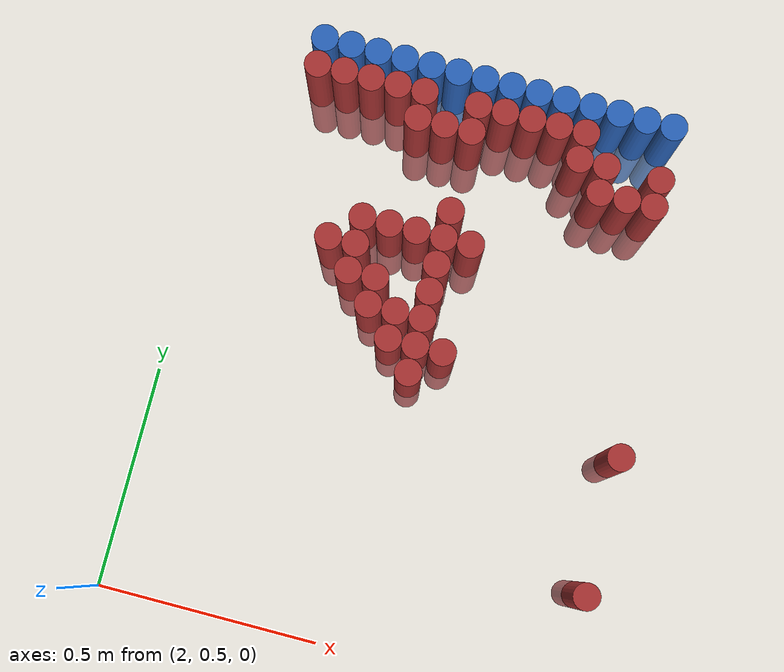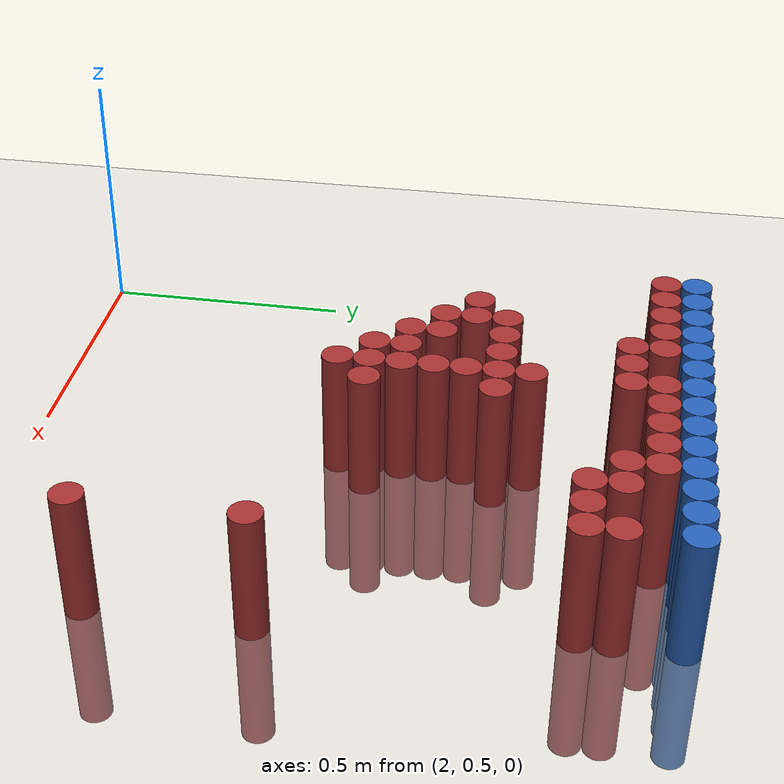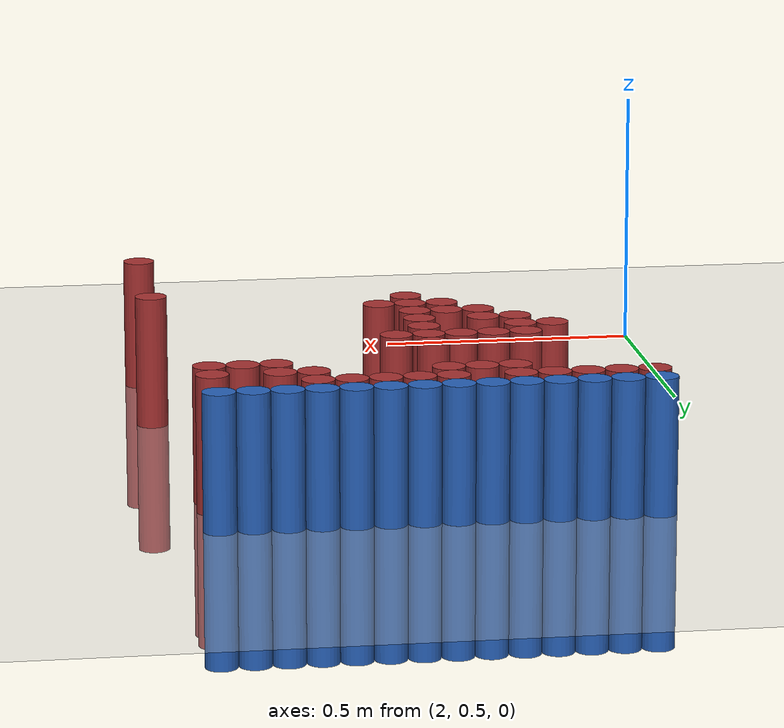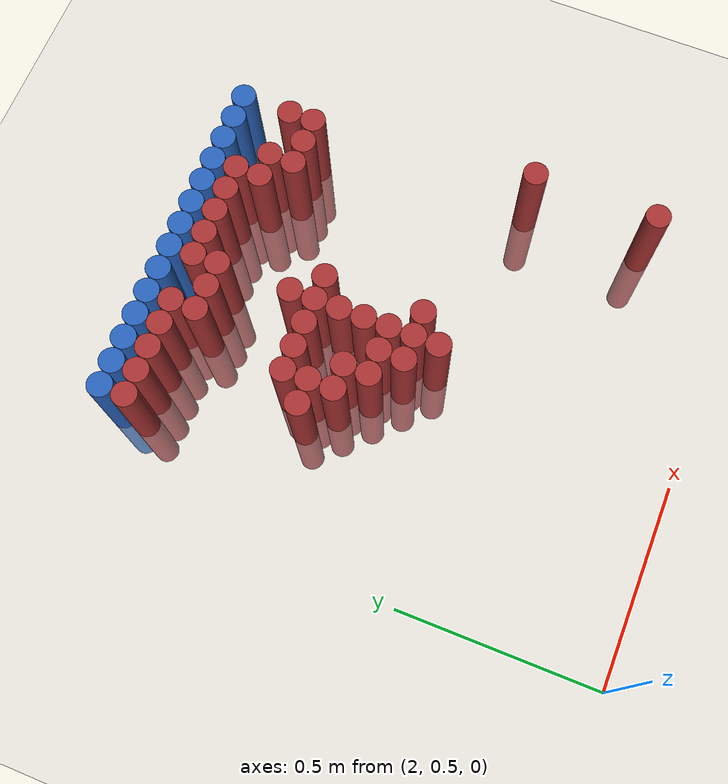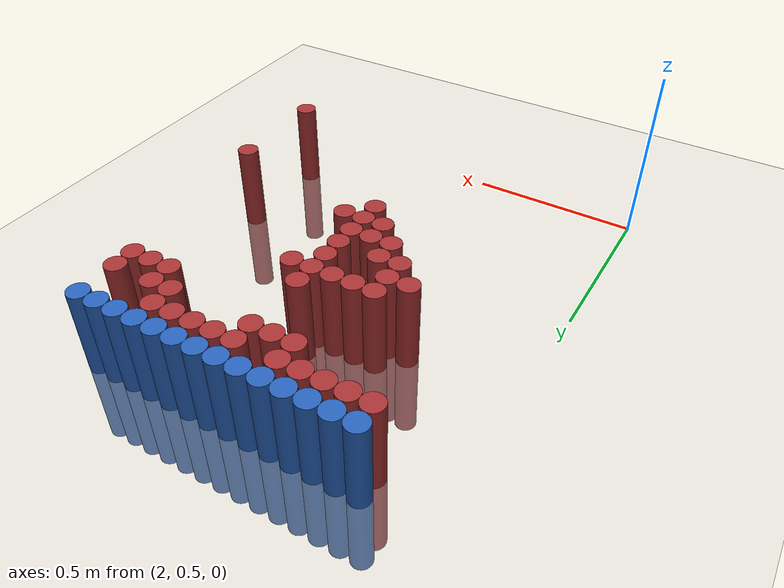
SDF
<sdf version="1.6">
 <world name="default">
  <model name="ground_plane">
   <static>1</static>
   <link name="link">
    <collision name="collision">
     <geometry><plane><normal>0 0 1</normal><size>100 100</size></plane></geometry>
     <surface><friction><ode><mu>100</mu><mu2>50</mu2></ode></friction></surface>
    </collision>
    <visual name="visual">
     <cast_shadows>0</cast_shadows>
     <geometry><plane><normal>0 0 1</normal><size>100 100</size></plane></geometry>
     <material>
      <script><uri>file://media/materials/scripts/gazebo.material</uri><name>Gazebo/Grey</name></script>
     </material>
    </visual>
   </link>
  </model>
  <model name="unit_cylinder_97">
   <static>1</static>
   <pose>2.190000 1.770000 0.000000 0.000000 0.000000 0.000000</pose>
   <link name="link">
    <inertial>
     <mass>1</mass>
     <inertia><ixx>0.145833</ixx><ixy>0</ixy><ixz>0</ixz><iyy>0.145833</iyy><iyz>0</iyz><izz>0.125</izz></inertia>
    </inertial>
    <collision name="collision">
     <geometry><cylinder><radius>0.030000</radius><length>0.5</length></cylinder></geometry>
    </collision>
    <visual name="visual">
     <geometry><cylinder><radius>0.030000</radius><length>0.5</length></cylinder></geometry>
     <material>
      <ambient>0.152000 0.379000 0.720000 1</ambient>
      <diffuse>0.152000 0.379000 0.720000 1</diffuse>
     </material>
     <material>
      <script><name>Gazebo/Grey</name><uri>file://media/materials/scripts/gazebo.material</uri></script>
     </material>
    </visual>
   </link>
  </model>
  <model name="unit_cylinder_98">
   <static>1</static>
   <pose>2.250000 1.770000 0.000000 0.000000 0.000000 0.000000</pose>
   <link name="link">
    <inertial>
     <mass>1</mass>
     <inertia><ixx>0.145833</ixx><ixy>0</ixy><ixz>0</ixz><iyy>0.145833</iyy><iyz>0</iyz><izz>0.125</izz></inertia>
    </inertial>
    <collision name="collision">
     <geometry><cylinder><radius>0.030000</radius><length>0.5</length></cylinder></geometry>
    </collision>
    <visual name="visual">
     <geometry><cylinder><radius>0.030000</radius><length>0.5</length></cylinder></geometry>
     <material>
      <ambient>0.152000 0.379000 0.720000 1</ambient>
      <diffuse>0.152000 0.379000 0.720000 1</diffuse>
     </material>
     <material>
      <script><name>Gazebo/Grey</name><uri>file://media/materials/scripts/gazebo.material</uri></script>
     </material>
    </visual>
   </link>
  </model>
  <model name="unit_cylinder_99">
   <static>1</static>
   <pose>2.310000 1.770000 0.000000 0.000000 0.000000 0.000000</pose>
   <link name="link">
    <inertial>
     <mass>1</mass>
     <inertia><ixx>0.145833</ixx><ixy>0</ixy><ixz>0</ixz><iyy>0.145833</iyy><iyz>0</iyz><izz>0.125</izz></inertia>
    </inertial>
    <collision name="collision">
     <geometry><cylinder><radius>0.030000</radius><length>0.5</length></cylinder></geometry>
    </collision>
    <visual name="visual">
     <geometry><cylinder><radius>0.030000</radius><length>0.5</length></cylinder></geometry>
     <material>
      <ambient>0.152000 0.379000 0.720000 1</ambient>
      <diffuse>0.152000 0.379000 0.720000 1</diffuse>
     </material>
     <material>
      <script><name>Gazebo/Grey</name><uri>file://media/materials/scripts/gazebo.material</uri></script>
     </material>
    </visual>
   </link>
  </model>
  <model name="unit_cylinder_100">
   <static>1</static>
   <pose>2.370000 1.770000 0.000000 0.000000 0.000000 0.000000</pose>
   <link name="link">
    <inertial>
     <mass>1</mass>
     <inertia><ixx>0.145833</ixx><ixy>0</ixy><ixz>0</ixz><iyy>0.145833</iyy><iyz>0</iyz><izz>0.125</izz></inertia>
    </inertial>
    <collision name="collision">
     <geometry><cylinder><radius>0.030000</radius><length>0.5</length></cylinder></geometry>
    </collision>
    <visual name="visual">
     <geometry><cylinder><radius>0.030000</radius><length>0.5</length></cylinder></geometry>
     <material>
      <ambient>0.152000 0.379000 0.720000 1</ambient>
      <diffuse>0.152000 0.379000 0.720000 1</diffuse>
     </material>
     <material>
      <script><name>Gazebo/Grey</name><uri>file://media/materials/scripts/gazebo.material</uri></script>
     </material>
    </visual>
   </link>
  </model>
  <model name="unit_cylinder_101">
   <static>1</static>
   <pose>2.430000 1.770000 0.000000 0.000000 0.000000 0.000000</pose>
   <link name="link">
    <inertial>
     <mass>1</mass>
     <inertia><ixx>0.145833</ixx><ixy>0</ixy><ixz>0</ixz><iyy>0.145833</iyy><iyz>0</iyz><izz>0.125</izz></inertia>
    </inertial>
    <collision name="collision">
     <geometry><cylinder><radius>0.030000</radius><length>0.5</length></cylinder></geometry>
    </collision>
    <visual name="visual">
     <geometry><cylinder><radius>0.030000</radius><length>0.5</length></cylinder></geometry>
     <material>
      <ambient>0.152000 0.379000 0.720000 1</ambient>
      <diffuse>0.152000 0.379000 0.720000 1</diffuse>
     </material>
     <material>
      <script><name>Gazebo/Grey</name><uri>file://media/materials/scripts/gazebo.material</uri></script>
     </material>
    </visual>
   </link>
  </model>
  <model name="unit_cylinder_102">
   <static>1</static>
   <pose>2.490000 1.770000 0.000000 0.000000 0.000000 0.000000</pose>
   <link name="link">
    <inertial>
     <mass>1</mass>
     <inertia><ixx>0.145833</ixx><ixy>0</ixy><ixz>0</ixz><iyy>0.145833</iyy><iyz>0</iyz><izz>0.125</izz></inertia>
    </inertial>
    <collision name="collision">
     <geometry><cylinder><radius>0.030000</radius><length>0.5</length></cylinder></geometry>
    </collision>
    <visual name="visual">
     <geometry><cylinder><radius>0.030000</radius><length>0.5</length></cylinder></geometry>
     <material>
      <ambient>0.152000 0.379000 0.720000 1</ambient>
      <diffuse>0.152000 0.379000 0.720000 1</diffuse>
     </material>
     <material>
      <script><name>Gazebo/Grey</name><uri>file://media/materials/scripts/gazebo.material</uri></script>
     </material>
    </visual>
   </link>
  </model>
  <model name="unit_cylinder_103">
   <static>1</static>
   <pose>2.550000 1.770000 0.000000 0.000000 0.000000 0.000000</pose>
   <link name="link">
    <inertial>
     <mass>1</mass>
     <inertia><ixx>0.145833</ixx><ixy>0</ixy><ixz>0</ixz><iyy>0.145833</iyy><iyz>0</iyz><izz>0.125</izz></inertia>
    </inertial>
    <collision name="collision">
     <geometry><cylinder><radius>0.030000</radius><length>0.5</length></cylinder></geometry>
    </collision>
    <visual name="visual">
     <geometry><cylinder><radius>0.030000</radius><length>0.5</length></cylinder></geometry>
     <material>
      <ambient>0.152000 0.379000 0.720000 1</ambient>
      <diffuse>0.152000 0.379000 0.720000 1</diffuse>
     </material>
     <material>
      <script><name>Gazebo/Grey</name><uri>file://media/materials/scripts/gazebo.material</uri></script>
     </material>
    </visual>
   </link>
  </model>
  <model name="unit_cylinder_104">
   <static>1</static>
   <pose>2.610000 1.770000 0.000000 0.000000 0.000000 0.000000</pose>
   <link name="link">
    <inertial>
     <mass>1</mass>
     <inertia><ixx>0.145833</ixx><ixy>0</ixy><ixz>0</ixz><iyy>0.145833</iyy><iyz>0</iyz><izz>0.125</izz></inertia>
    </inertial>
    <collision name="collision">
     <geometry><cylinder><radius>0.030000</radius><length>0.5</length></cylinder></geometry>
    </collision>
    <visual name="visual">
     <geometry><cylinder><radius>0.030000</radius><length>0.5</length></cylinder></geometry>
     <material>
      <ambient>0.152000 0.379000 0.720000 1</ambient>
      <diffuse>0.152000 0.379000 0.720000 1</diffuse>
     </material>
     <material>
      <script><name>Gazebo/Grey</name><uri>file://media/materials/scripts/gazebo.material</uri></script>
     </material>
    </visual>
   </link>
  </model>
  <model name="unit_cylinder_105">
   <static>1</static>
   <pose>2.670000 1.770000 0.000000 0.000000 0.000000 0.000000</pose>
   <link name="link">
    <inertial>
     <mass>1</mass>
     <inertia><ixx>0.145833</ixx><ixy>0</ixy><ixz>0</ixz><iyy>0.145833</iyy><iyz>0</iyz><izz>0.125</izz></inertia>
    </inertial>
    <collision name="collision">
     <geometry><cylinder><radius>0.030000</radius><length>0.5</length></cylinder></geometry>
    </collision>
    <visual name="visual">
     <geometry><cylinder><radius>0.030000</radius><length>0.5</length></cylinder></geometry>
     <material>
      <ambient>0.152000 0.379000 0.720000 1</ambient>
      <diffuse>0.152000 0.379000 0.720000 1</diffuse>
     </material>
     <material>
      <script><name>Gazebo/Grey</name><uri>file://media/materials/scripts/gazebo.material</uri></script>
     </material>
    </visual>
   </link>
  </model>
  <model name="unit_cylinder_106">
   <static>1</static>
   <pose>2.730000 1.770000 0.000000 0.000000 0.000000 0.000000</pose>
   <link name="link">
    <inertial>
     <mass>1</mass>
     <inertia><ixx>0.145833</ixx><ixy>0</ixy><ixz>0</ixz><iyy>0.145833</iyy><iyz>0</iyz><izz>0.125</izz></inertia>
    </inertial>
    <collision name="collision">
     <geometry><cylinder><radius>0.030000</radius><length>0.5</length></cylinder></geometry>
    </collision>
    <visual name="visual">
     <geometry><cylinder><radius>0.030000</radius><length>0.5</length></cylinder></geometry>
     <material>
      <ambient>0.152000 0.379000 0.720000 1</ambient>
      <diffuse>0.152000 0.379000 0.720000 1</diffuse>
     </material>
     <material>
      <script><name>Gazebo/Grey</name><uri>file://media/materials/scripts/gazebo.material</uri></script>
     </material>
    </visual>
   </link>
  </model>
  <model name="unit_cylinder_107">
   <static>1</static>
   <pose>2.790000 1.770000 0.000000 0.000000 0.000000 0.000000</pose>
   <link name="link">
    <inertial>
     <mass>1</mass>
     <inertia><ixx>0.145833</ixx><ixy>0</ixy><ixz>0</ixz><iyy>0.145833</iyy><iyz>0</iyz><izz>0.125</izz></inertia>
    </inertial>
    <collision name="collision">
     <geometry><cylinder><radius>0.030000</radius><length>0.5</length></cylinder></geometry>
    </collision>
    <visual name="visual">
     <geometry><cylinder><radius>0.030000</radius><length>0.5</length></cylinder></geometry>
     <material>
      <ambient>0.152000 0.379000 0.720000 1</ambient>
      <diffuse>0.152000 0.379000 0.720000 1</diffuse>
     </material>
     <material>
      <script><name>Gazebo/Grey</name><uri>file://media/materials/scripts/gazebo.material</uri></script>
     </material>
    </visual>
   </link>
  </model>
  <model name="unit_cylinder_108">
   <static>1</static>
   <pose>2.850000 1.770000 0.000000 0.000000 0.000000 0.000000</pose>
   <link name="link">
    <inertial>
     <mass>1</mass>
     <inertia><ixx>0.145833</ixx><ixy>0</ixy><ixz>0</ixz><iyy>0.145833</iyy><iyz>0</iyz><izz>0.125</izz></inertia>
    </inertial>
    <collision name="collision">
     <geometry><cylinder><radius>0.030000</radius><length>0.5</length></cylinder></geometry>
    </collision>
    <visual name="visual">
     <geometry><cylinder><radius>0.030000</radius><length>0.5</length></cylinder></geometry>
     <material>
      <ambient>0.152000 0.379000 0.720000 1</ambient>
      <diffuse>0.152000 0.379000 0.720000 1</diffuse>
     </material>
     <material>
      <script><name>Gazebo/Grey</name><uri>file://media/materials/scripts/gazebo.material</uri></script>
     </material>
    </visual>
   </link>
  </model>
  <model name="unit_cylinder_109">
   <static>1</static>
   <pose>2.910000 1.770000 0.000000 0.000000 0.000000 0.000000</pose>
   <link name="link">
    <inertial>
     <mass>1</mass>
     <inertia><ixx>0.145833</ixx><ixy>0</ixy><ixz>0</ixz><iyy>0.145833</iyy><iyz>0</iyz><izz>0.125</izz></inertia>
    </inertial>
    <collision name="collision">
     <geometry><cylinder><radius>0.030000</radius><length>0.5</length></cylinder></geometry>
    </collision>
    <visual name="visual">
     <geometry><cylinder><radius>0.030000</radius><length>0.5</length></cylinder></geometry>
     <material>
      <ambient>0.152000 0.379000 0.720000 1</ambient>
      <diffuse>0.152000 0.379000 0.720000 1</diffuse>
     </material>
     <material>
      <script><name>Gazebo/Grey</name><uri>file://media/materials/scripts/gazebo.material</uri></script>
     </material>
    </visual>
   </link>
  </model>
  <model name="unit_cylinder_110">
   <static>1</static>
   <pose>2.970000 1.770000 0.000000 0.000000 0.000000 0.000000</pose>
   <link name="link">
    <inertial>
     <mass>1</mass>
     <inertia><ixx>0.145833</ixx><ixy>0</ixy><ixz>0</ixz><iyy>0.145833</iyy><iyz>0</iyz><izz>0.125</izz></inertia>
    </inertial>
    <collision name="collision">
     <geometry><cylinder><radius>0.030000</radius><length>0.5</length></cylinder></geometry>
    </collision>
    <visual name="visual">
     <geometry><cylinder><radius>0.030000</radius><length>0.5</length></cylinder></geometry>
     <material>
      <ambient>0.152000 0.379000 0.720000 1</ambient>
      <diffuse>0.152000 0.379000 0.720000 1</diffuse>
     </material>
     <material>
      <script><name>Gazebo/Grey</name><uri>file://media/materials/scripts/gazebo.material</uri></script>
     </material>
    </visual>
   </link>
  </model>
  <model name="unit_cylinder_127">
   <static>1</static>
   <pose>2.190000 1.710000 0.000000 0.000000 0.000000 0.000000</pose>
   <link name="link">
    <inertial>
     <mass>1</mass>
     <inertia><ixx>0.145833</ixx><ixy>0</ixy><ixz>0</ixz><iyy>0.145833</iyy><iyz>0</iyz><izz>0.125</izz></inertia>
    </inertial>
    <collision name="collision">
     <geometry><cylinder><radius>0.030000</radius><length>0.5</length></cylinder></geometry>
    </collision>
    <visual name="visual">
     <geometry><cylinder><radius>0.030000</radius><length>0.5</length></cylinder></geometry>
     <material>
      <ambient>0.648000 0.192000 0.192000 1</ambient>
      <diffuse>0.648000 0.192000 0.192000 1</diffuse>
     </material>
     <material>
      <script><name>Gazebo/Grey</name><uri>file://media/materials/scripts/gazebo.material</uri></script>
     </material>
    </visual>
   </link>
  </model>
  <model name="unit_cylinder_128">
   <static>1</static>
   <pose>2.250000 1.710000 0.000000 0.000000 0.000000 0.000000</pose>
   <link name="link">
    <inertial>
     <mass>1</mass>
     <inertia><ixx>0.145833</ixx><ixy>0</ixy><ixz>0</ixz><iyy>0.145833</iyy><iyz>0</iyz><izz>0.125</izz></inertia>
    </inertial>
    <collision name="collision">
     <geometry><cylinder><radius>0.030000</radius><length>0.5</length></cylinder></geometry>
    </collision>
    <visual name="visual">
     <geometry><cylinder><radius>0.030000</radius><length>0.5</length></cylinder></geometry>
     <material>
      <ambient>0.648000 0.192000 0.192000 1</ambient>
      <diffuse>0.648000 0.192000 0.192000 1</diffuse>
     </material>
     <material>
      <script><name>Gazebo/Grey</name><uri>file://media/materials/scripts/gazebo.material</uri></script>
     </material>
    </visual>
   </link>
  </model>
  <model name="unit_cylinder_129">
   <static>1</static>
   <pose>2.310000 1.710000 0.000000 0.000000 0.000000 0.000000</pose>
   <link name="link">
    <inertial>
     <mass>1</mass>
     <inertia><ixx>0.145833</ixx><ixy>0</ixy><ixz>0</ixz><iyy>0.145833</iyy><iyz>0</iyz><izz>0.125</izz></inertia>
    </inertial>
    <collision name="collision">
     <geometry><cylinder><radius>0.030000</radius><length>0.5</length></cylinder></geometry>
    </collision>
    <visual name="visual">
     <geometry><cylinder><radius>0.030000</radius><length>0.5</length></cylinder></geometry>
     <material>
      <ambient>0.648000 0.192000 0.192000 1</ambient>
      <diffuse>0.648000 0.192000 0.192000 1</diffuse>
     </material>
     <material>
      <script><name>Gazebo/Grey</name><uri>file://media/materials/scripts/gazebo.material</uri></script>
     </material>
    </visual>
   </link>
  </model>
  <model name="unit_cylinder_130">
   <static>1</static>
   <pose>2.370000 1.710000 0.000000 0.000000 0.000000 0.000000</pose>
   <link name="link">
    <inertial>
     <mass>1</mass>
     <inertia><ixx>0.145833</ixx><ixy>0</ixy><ixz>0</ixz><iyy>0.145833</iyy><iyz>0</iyz><izz>0.125</izz></inertia>
    </inertial>
    <collision name="collision">
     <geometry><cylinder><radius>0.030000</radius><length>0.5</length></cylinder></geometry>
    </collision>
    <visual name="visual">
     <geometry><cylinder><radius>0.030000</radius><length>0.5</length></cylinder></geometry>
     <material>
      <ambient>0.648000 0.192000 0.192000 1</ambient>
      <diffuse>0.648000 0.192000 0.192000 1</diffuse>
     </material>
     <material>
      <script><name>Gazebo/Grey</name><uri>file://media/materials/scripts/gazebo.material</uri></script>
     </material>
    </visual>
   </link>
  </model>
  <model name="unit_cylinder_131">
   <static>1</static>
   <pose>2.430000 1.710000 0.000000 0.000000 0.000000 0.000000</pose>
   <link name="link">
    <inertial>
     <mass>1</mass>
     <inertia><ixx>0.145833</ixx><ixy>0</ixy><ixz>0</ixz><iyy>0.145833</iyy><iyz>0</iyz><izz>0.125</izz></inertia>
    </inertial>
    <collision name="collision">
     <geometry><cylinder><radius>0.030000</radius><length>0.5</length></cylinder></geometry>
    </collision>
    <visual name="visual">
     <geometry><cylinder><radius>0.030000</radius><length>0.5</length></cylinder></geometry>
     <material>
      <ambient>0.648000 0.192000 0.192000 1</ambient>
      <diffuse>0.648000 0.192000 0.192000 1</diffuse>
     </material>
     <material>
      <script><name>Gazebo/Grey</name><uri>file://media/materials/scripts/gazebo.material</uri></script>
     </material>
    </visual>
   </link>
  </model>
  <model name="unit_cylinder_132">
   <static>1</static>
   <pose>2.550000 1.710000 0.000000 0.000000 0.000000 0.000000</pose>
   <link name="link">
    <inertial>
     <mass>1</mass>
     <inertia><ixx>0.145833</ixx><ixy>0</ixy><ixz>0</ixz><iyy>0.145833</iyy><iyz>0</iyz><izz>0.125</izz></inertia>
    </inertial>
    <collision name="collision">
     <geometry><cylinder><radius>0.030000</radius><length>0.5</length></cylinder></geometry>
    </collision>
    <visual name="visual">
     <geometry><cylinder><radius>0.030000</radius><length>0.5</length></cylinder></geometry>
     <material>
      <ambient>0.648000 0.192000 0.192000 1</ambient>
      <diffuse>0.648000 0.192000 0.192000 1</diffuse>
     </material>
     <material>
      <script><name>Gazebo/Grey</name><uri>file://media/materials/scripts/gazebo.material</uri></script>
     </material>
    </visual>
   </link>
  </model>
  <model name="unit_cylinder_133">
   <static>1</static>
   <pose>2.610000 1.710000 0.000000 0.000000 0.000000 0.000000</pose>
   <link name="link">
    <inertial>
     <mass>1</mass>
     <inertia><ixx>0.145833</ixx><ixy>0</ixy><ixz>0</ixz><iyy>0.145833</iyy><iyz>0</iyz><izz>0.125</izz></inertia>
    </inertial>
    <collision name="collision">
     <geometry><cylinder><radius>0.030000</radius><length>0.5</length></cylinder></geometry>
    </collision>
    <visual name="visual">
     <geometry><cylinder><radius>0.030000</radius><length>0.5</length></cylinder></geometry>
     <material>
      <ambient>0.648000 0.192000 0.192000 1</ambient>
      <diffuse>0.648000 0.192000 0.192000 1</diffuse>
     </material>
     <material>
      <script><name>Gazebo/Grey</name><uri>file://media/materials/scripts/gazebo.material</uri></script>
     </material>
    </visual>
   </link>
  </model>
  <model name="unit_cylinder_134">
   <static>1</static>
   <pose>2.670000 1.710000 0.000000 0.000000 0.000000 0.000000</pose>
   <link name="link">
    <inertial>
     <mass>1</mass>
     <inertia><ixx>0.145833</ixx><ixy>0</ixy><ixz>0</ixz><iyy>0.145833</iyy><iyz>0</iyz><izz>0.125</izz></inertia>
    </inertial>
    <collision name="collision">
     <geometry><cylinder><radius>0.030000</radius><length>0.5</length></cylinder></geometry>
    </collision>
    <visual name="visual">
     <geometry><cylinder><radius>0.030000</radius><length>0.5</length></cylinder></geometry>
     <material>
      <ambient>0.648000 0.192000 0.192000 1</ambient>
      <diffuse>0.648000 0.192000 0.192000 1</diffuse>
     </material>
     <material>
      <script><name>Gazebo/Grey</name><uri>file://media/materials/scripts/gazebo.material</uri></script>
     </material>
    </visual>
   </link>
  </model>
  <model name="unit_cylinder_135">
   <static>1</static>
   <pose>2.730000 1.710000 0.000000 0.000000 0.000000 0.000000</pose>
   <link name="link">
    <inertial>
     <mass>1</mass>
     <inertia><ixx>0.145833</ixx><ixy>0</ixy><ixz>0</ixz><iyy>0.145833</iyy><iyz>0</iyz><izz>0.125</izz></inertia>
    </inertial>
    <collision name="collision">
     <geometry><cylinder><radius>0.030000</radius><length>0.5</length></cylinder></geometry>
    </collision>
    <visual name="visual">
     <geometry><cylinder><radius>0.030000</radius><length>0.5</length></cylinder></geometry>
     <material>
      <ambient>0.648000 0.192000 0.192000 1</ambient>
      <diffuse>0.648000 0.192000 0.192000 1</diffuse>
     </material>
     <material>
      <script><name>Gazebo/Grey</name><uri>file://media/materials/scripts/gazebo.material</uri></script>
     </material>
    </visual>
   </link>
  </model>
  <model name="unit_cylinder_136">
   <static>1</static>
   <pose>2.790000 1.710000 0.000000 0.000000 0.000000 0.000000</pose>
   <link name="link">
    <inertial>
     <mass>1</mass>
     <inertia><ixx>0.145833</ixx><ixy>0</ixy><ixz>0</ixz><iyy>0.145833</iyy><iyz>0</iyz><izz>0.125</izz></inertia>
    </inertial>
    <collision name="collision">
     <geometry><cylinder><radius>0.030000</radius><length>0.5</length></cylinder></geometry>
    </collision>
    <visual name="visual">
     <geometry><cylinder><radius>0.030000</radius><length>0.5</length></cylinder></geometry>
     <material>
      <ambient>0.648000 0.192000 0.192000 1</ambient>
      <diffuse>0.648000 0.192000 0.192000 1</diffuse>
     </material>
     <material>
      <script><name>Gazebo/Grey</name><uri>file://media/materials/scripts/gazebo.material</uri></script>
     </material>
    </visual>
   </link>
  </model>
  <model name="unit_cylinder_143">
   <static>1</static>
   <pose>2.430000 1.650000 0.000000 0.000000 0.000000 0.000000</pose>
   <link name="link">
    <inertial>
     <mass>1</mass>
     <inertia><ixx>0.145833</ixx><ixy>0</ixy><ixz>0</ixz><iyy>0.145833</iyy><iyz>0</iyz><izz>0.125</izz></inertia>
    </inertial>
    <collision name="collision">
     <geometry><cylinder><radius>0.030000</radius><length>0.5</length></cylinder></geometry>
    </collision>
    <visual name="visual">
     <geometry><cylinder><radius>0.030000</radius><length>0.5</length></cylinder></geometry>
     <material>
      <ambient>0.648000 0.192000 0.192000 1</ambient>
      <diffuse>0.648000 0.192000 0.192000 1</diffuse>
     </material>
     <material>
      <script><name>Gazebo/Grey</name><uri>file://media/materials/scripts/gazebo.material</uri></script>
     </material>
    </visual>
   </link>
  </model>
  <model name="unit_cylinder_144">
   <static>1</static>
   <pose>2.490000 1.650000 0.000000 0.000000 0.000000 0.000000</pose>
   <link name="link">
    <inertial>
     <mass>1</mass>
     <inertia><ixx>0.145833</ixx><ixy>0</ixy><ixz>0</ixz><iyy>0.145833</iyy><iyz>0</iyz><izz>0.125</izz></inertia>
    </inertial>
    <collision name="collision">
     <geometry><cylinder><radius>0.030000</radius><length>0.5</length></cylinder></geometry>
    </collision>
    <visual name="visual">
     <geometry><cylinder><radius>0.030000</radius><length>0.5</length></cylinder></geometry>
     <material>
      <ambient>0.648000 0.192000 0.192000 1</ambient>
      <diffuse>0.648000 0.192000 0.192000 1</diffuse>
     </material>
     <material>
      <script><name>Gazebo/Grey</name><uri>file://media/materials/scripts/gazebo.material</uri></script>
     </material>
    </visual>
   </link>
  </model>
  <model name="unit_cylinder_145">
   <static>1</static>
   <pose>2.550000 1.650000 0.000000 0.000000 0.000000 0.000000</pose>
   <link name="link">
    <inertial>
     <mass>1</mass>
     <inertia><ixx>0.145833</ixx><ixy>0</ixy><ixz>0</ixz><iyy>0.145833</iyy><iyz>0</iyz><izz>0.125</izz></inertia>
    </inertial>
    <collision name="collision">
     <geometry><cylinder><radius>0.030000</radius><length>0.5</length></cylinder></geometry>
    </collision>
    <visual name="visual">
     <geometry><cylinder><radius>0.030000</radius><length>0.5</length></cylinder></geometry>
     <material>
      <ambient>0.648000 0.192000 0.192000 1</ambient>
      <diffuse>0.648000 0.192000 0.192000 1</diffuse>
     </material>
     <material>
      <script><name>Gazebo/Grey</name><uri>file://media/materials/scripts/gazebo.material</uri></script>
     </material>
    </visual>
   </link>
  </model>
  <model name="unit_cylinder_146">
   <static>1</static>
   <pose>2.790000 1.650000 0.000000 0.000000 0.000000 0.000000</pose>
   <link name="link">
    <inertial>
     <mass>1</mass>
     <inertia><ixx>0.145833</ixx><ixy>0</ixy><ixz>0</ixz><iyy>0.145833</iyy><iyz>0</iyz><izz>0.125</izz></inertia>
    </inertial>
    <collision name="collision">
     <geometry><cylinder><radius>0.030000</radius><length>0.5</length></cylinder></geometry>
    </collision>
    <visual name="visual">
     <geometry><cylinder><radius>0.030000</radius><length>0.5</length></cylinder></geometry>
     <material>
      <ambient>0.648000 0.192000 0.192000 1</ambient>
      <diffuse>0.648000 0.192000 0.192000 1</diffuse>
     </material>
     <material>
      <script><name>Gazebo/Grey</name><uri>file://media/materials/scripts/gazebo.material</uri></script>
     </material>
    </visual>
   </link>
  </model>
  <model name="unit_cylinder_147">
   <static>1</static>
   <pose>2.850000 1.650000 0.000000 0.000000 0.000000 0.000000</pose>
   <link name="link">
    <inertial>
     <mass>1</mass>
     <inertia><ixx>0.145833</ixx><ixy>0</ixy><ixz>0</ixz><iyy>0.145833</iyy><iyz>0</iyz><izz>0.125</izz></inertia>
    </inertial>
    <collision name="collision">
     <geometry><cylinder><radius>0.030000</radius><length>0.5</length></cylinder></geometry>
    </collision>
    <visual name="visual">
     <geometry><cylinder><radius>0.030000</radius><length>0.5</length></cylinder></geometry>
     <material>
      <ambient>0.648000 0.192000 0.192000 1</ambient>
      <diffuse>0.648000 0.192000 0.192000 1</diffuse>
     </material>
     <material>
      <script><name>Gazebo/Grey</name><uri>file://media/materials/scripts/gazebo.material</uri></script>
     </material>
    </visual>
   </link>
  </model>
  <model name="unit_cylinder_148">
   <static>1</static>
   <pose>2.970000 1.650000 0.000000 0.000000 0.000000 0.000000</pose>
   <link name="link">
    <inertial>
     <mass>1</mass>
     <inertia><ixx>0.145833</ixx><ixy>0</ixy><ixz>0</ixz><iyy>0.145833</iyy><iyz>0</iyz><izz>0.125</izz></inertia>
    </inertial>
    <collision name="collision">
     <geometry><cylinder><radius>0.030000</radius><length>0.5</length></cylinder></geometry>
    </collision>
    <visual name="visual">
     <geometry><cylinder><radius>0.030000</radius><length>0.5</length></cylinder></geometry>
     <material>
      <ambient>0.648000 0.192000 0.192000 1</ambient>
      <diffuse>0.648000 0.192000 0.192000 1</diffuse>
     </material>
     <material>
      <script><name>Gazebo/Grey</name><uri>file://media/materials/scripts/gazebo.material</uri></script>
     </material>
    </visual>
   </link>
  </model>
  <model name="unit_cylinder_153">
   <static>1</static>
   <pose>2.850000 1.590000 0.000000 0.000000 0.000000 0.000000</pose>
   <link name="link">
    <inertial>
     <mass>1</mass>
     <inertia><ixx>0.145833</ixx><ixy>0</ixy><ixz>0</ixz><iyy>0.145833</iyy><iyz>0</iyz><izz>0.125</izz></inertia>
    </inertial>
    <collision name="collision">
     <geometry><cylinder><radius>0.030000</radius><length>0.5</length></cylinder></geometry>
    </collision>
    <visual name="visual">
     <geometry><cylinder><radius>0.030000</radius><length>0.5</length></cylinder></geometry>
     <material>
      <ambient>0.648000 0.192000 0.192000 1</ambient>
      <diffuse>0.648000 0.192000 0.192000 1</diffuse>
     </material>
     <material>
      <script><name>Gazebo/Grey</name><uri>file://media/materials/scripts/gazebo.material</uri></script>
     </material>
    </visual>
   </link>
  </model>
  <model name="unit_cylinder_154">
   <static>1</static>
   <pose>2.910000 1.590000 0.000000 0.000000 0.000000 0.000000</pose>
   <link name="link">
    <inertial>
     <mass>1</mass>
     <inertia><ixx>0.145833</ixx><ixy>0</ixy><ixz>0</ixz><iyy>0.145833</iyy><iyz>0</iyz><izz>0.125</izz></inertia>
    </inertial>
    <collision name="collision">
     <geometry><cylinder><radius>0.030000</radius><length>0.5</length></cylinder></geometry>
    </collision>
    <visual name="visual">
     <geometry><cylinder><radius>0.030000</radius><length>0.5</length></cylinder></geometry>
     <material>
      <ambient>0.648000 0.192000 0.192000 1</ambient>
      <diffuse>0.648000 0.192000 0.192000 1</diffuse>
     </material>
     <material>
      <script><name>Gazebo/Grey</name><uri>file://media/materials/scripts/gazebo.material</uri></script>
     </material>
    </visual>
   </link>
  </model>
  <model name="unit_cylinder_155">
   <static>1</static>
   <pose>2.970000 1.590000 0.000000 0.000000 0.000000 0.000000</pose>
   <link name="link">
    <inertial>
     <mass>1</mass>
     <inertia><ixx>0.145833</ixx><ixy>0</ixy><ixz>0</ixz><iyy>0.145833</iyy><iyz>0</iyz><izz>0.125</izz></inertia>
    </inertial>
    <collision name="collision">
     <geometry><cylinder><radius>0.030000</radius><length>0.5</length></cylinder></geometry>
    </collision>
    <visual name="visual">
     <geometry><cylinder><radius>0.030000</radius><length>0.5</length></cylinder></geometry>
     <material>
      <ambient>0.648000 0.192000 0.192000 1</ambient>
      <diffuse>0.648000 0.192000 0.192000 1</diffuse>
     </material>
     <material>
      <script><name>Gazebo/Grey</name><uri>file://media/materials/scripts/gazebo.material</uri></script>
     </material>
    </visual>
   </link>
  </model>
  <model name="unit_cylinder_163">
   <static>1</static>
   <pose>2.550000 1.470000 0.000000 0.000000 0.000000 0.000000</pose>
   <link name="link">
    <inertial>
     <mass>1</mass>
     <inertia><ixx>0.145833</ixx><ixy>0</ixy><ixz>0</ixz><iyy>0.145833</iyy><iyz>0</iyz><izz>0.125</izz></inertia>
    </inertial>
    <collision name="collision">
     <geometry><cylinder><radius>0.030000</radius><length>0.5</length></cylinder></geometry>
    </collision>
    <visual name="visual">
     <geometry><cylinder><radius>0.030000</radius><length>0.5</length></cylinder></geometry>
     <material>
      <ambient>0.648000 0.192000 0.192000 1</ambient>
      <diffuse>0.648000 0.192000 0.192000 1</diffuse>
     </material>
     <material>
      <script><name>Gazebo/Grey</name><uri>file://media/materials/scripts/gazebo.material</uri></script>
     </material>
    </visual>
   </link>
  </model>
  <model name="unit_cylinder_167">
   <static>1</static>
   <pose>2.370000 1.410000 0.000000 0.000000 0.000000 0.000000</pose>
   <link name="link">
    <inertial>
     <mass>1</mass>
     <inertia><ixx>0.145833</ixx><ixy>0</ixy><ixz>0</ixz><iyy>0.145833</iyy><iyz>0</iyz><izz>0.125</izz></inertia>
    </inertial>
    <collision name="collision">
     <geometry><cylinder><radius>0.030000</radius><length>0.5</length></cylinder></geometry>
    </collision>
    <visual name="visual">
     <geometry><cylinder><radius>0.030000</radius><length>0.5</length></cylinder></geometry>
     <material>
      <ambient>0.648000 0.192000 0.192000 1</ambient>
      <diffuse>0.648000 0.192000 0.192000 1</diffuse>
     </material>
     <material>
      <script><name>Gazebo/Grey</name><uri>file://media/materials/scripts/gazebo.material</uri></script>
     </material>
    </visual>
   </link>
  </model>
  <model name="unit_cylinder_168">
   <static>1</static>
   <pose>2.430000 1.410000 0.000000 0.000000 0.000000 0.000000</pose>
   <link name="link">
    <inertial>
     <mass>1</mass>
     <inertia><ixx>0.145833</ixx><ixy>0</ixy><ixz>0</ixz><iyy>0.145833</iyy><iyz>0</iyz><izz>0.125</izz></inertia>
    </inertial>
    <collision name="collision">
     <geometry><cylinder><radius>0.030000</radius><length>0.5</length></cylinder></geometry>
    </collision>
    <visual name="visual">
     <geometry><cylinder><radius>0.030000</radius><length>0.5</length></cylinder></geometry>
     <material>
      <ambient>0.648000 0.192000 0.192000 1</ambient>
      <diffuse>0.648000 0.192000 0.192000 1</diffuse>
     </material>
     <material>
      <script><name>Gazebo/Grey</name><uri>file://media/materials/scripts/gazebo.material</uri></script>
     </material>
    </visual>
   </link>
  </model>
  <model name="unit_cylinder_169">
   <static>1</static>
   <pose>2.490000 1.410000 0.000000 0.000000 0.000000 0.000000</pose>
   <link name="link">
    <inertial>
     <mass>1</mass>
     <inertia><ixx>0.145833</ixx><ixy>0</ixy><ixz>0</ixz><iyy>0.145833</iyy><iyz>0</iyz><izz>0.125</izz></inertia>
    </inertial>
    <collision name="collision">
     <geometry><cylinder><radius>0.030000</radius><length>0.5</length></cylinder></geometry>
    </collision>
    <visual name="visual">
     <geometry><cylinder><radius>0.030000</radius><length>0.5</length></cylinder></geometry>
     <material>
      <ambient>0.648000 0.192000 0.192000 1</ambient>
      <diffuse>0.648000 0.192000 0.192000 1</diffuse>
     </material>
     <material>
      <script><name>Gazebo/Grey</name><uri>file://media/materials/scripts/gazebo.material</uri></script>
     </material>
    </visual>
   </link>
  </model>
  <model name="unit_cylinder_170">
   <static>1</static>
   <pose>2.550000 1.410000 0.000000 0.000000 0.000000 0.000000</pose>
   <link name="link">
    <inertial>
     <mass>1</mass>
     <inertia><ixx>0.145833</ixx><ixy>0</ixy><ixz>0</ixz><iyy>0.145833</iyy><iyz>0</iyz><izz>0.125</izz></inertia>
    </inertial>
    <collision name="collision">
     <geometry><cylinder><radius>0.030000</radius><length>0.5</length></cylinder></geometry>
    </collision>
    <visual name="visual">
     <geometry><cylinder><radius>0.030000</radius><length>0.5</length></cylinder></geometry>
     <material>
      <ambient>0.648000 0.192000 0.192000 1</ambient>
      <diffuse>0.648000 0.192000 0.192000 1</diffuse>
     </material>
     <material>
      <script><name>Gazebo/Grey</name><uri>file://media/materials/scripts/gazebo.material</uri></script>
     </material>
    </visual>
   </link>
  </model>
  <model name="unit_cylinder_171">
   <static>1</static>
   <pose>2.610000 1.410000 0.000000 0.000000 0.000000 0.000000</pose>
   <link name="link">
    <inertial>
     <mass>1</mass>
     <inertia><ixx>0.145833</ixx><ixy>0</ixy><ixz>0</ixz><iyy>0.145833</iyy><iyz>0</iyz><izz>0.125</izz></inertia>
    </inertial>
    <collision name="collision">
     <geometry><cylinder><radius>0.030000</radius><length>0.5</length></cylinder></geometry>
    </collision>
    <visual name="visual">
     <geometry><cylinder><radius>0.030000</radius><length>0.5</length></cylinder></geometry>
     <material>
      <ambient>0.648000 0.192000 0.192000 1</ambient>
      <diffuse>0.648000 0.192000 0.192000 1</diffuse>
     </material>
     <material>
      <script><name>Gazebo/Grey</name><uri>file://media/materials/scripts/gazebo.material</uri></script>
     </material>
    </visual>
   </link>
  </model>
  <model name="unit_cylinder_173">
   <static>1</static>
   <pose>2.310000 1.350000 0.000000 0.000000 0.000000 0.000000</pose>
   <link name="link">
    <inertial>
     <mass>1</mass>
     <inertia><ixx>0.145833</ixx><ixy>0</ixy><ixz>0</ixz><iyy>0.145833</iyy><iyz>0</iyz><izz>0.125</izz></inertia>
    </inertial>
    <collision name="collision">
     <geometry><cylinder><radius>0.030000</radius><length>0.5</length></cylinder></geometry>
    </collision>
    <visual name="visual">
     <geometry><cylinder><radius>0.030000</radius><length>0.5</length></cylinder></geometry>
     <material>
      <ambient>0.648000 0.192000 0.192000 1</ambient>
      <diffuse>0.648000 0.192000 0.192000 1</diffuse>
     </material>
     <material>
      <script><name>Gazebo/Grey</name><uri>file://media/materials/scripts/gazebo.material</uri></script>
     </material>
    </visual>
   </link>
  </model>
  <model name="unit_cylinder_174">
   <static>1</static>
   <pose>2.370000 1.350000 0.000000 0.000000 0.000000 0.000000</pose>
   <link name="link">
    <inertial>
     <mass>1</mass>
     <inertia><ixx>0.145833</ixx><ixy>0</ixy><ixz>0</ixz><iyy>0.145833</iyy><iyz>0</iyz><izz>0.125</izz></inertia>
    </inertial>
    <collision name="collision">
     <geometry><cylinder><radius>0.030000</radius><length>0.5</length></cylinder></geometry>
    </collision>
    <visual name="visual">
     <geometry><cylinder><radius>0.030000</radius><length>0.5</length></cylinder></geometry>
     <material>
      <ambient>0.648000 0.192000 0.192000 1</ambient>
      <diffuse>0.648000 0.192000 0.192000 1</diffuse>
     </material>
     <material>
      <script><name>Gazebo/Grey</name><uri>file://media/materials/scripts/gazebo.material</uri></script>
     </material>
    </visual>
   </link>
  </model>
  <model name="unit_cylinder_175">
   <static>1</static>
   <pose>2.550000 1.350000 0.000000 0.000000 0.000000 0.000000</pose>
   <link name="link">
    <inertial>
     <mass>1</mass>
     <inertia><ixx>0.145833</ixx><ixy>0</ixy><ixz>0</ixz><iyy>0.145833</iyy><iyz>0</iyz><izz>0.125</izz></inertia>
    </inertial>
    <collision name="collision">
     <geometry><cylinder><radius>0.030000</radius><length>0.5</length></cylinder></geometry>
    </collision>
    <visual name="visual">
     <geometry><cylinder><radius>0.030000</radius><length>0.5</length></cylinder></geometry>
     <material>
      <ambient>0.648000 0.192000 0.192000 1</ambient>
      <diffuse>0.648000 0.192000 0.192000 1</diffuse>
     </material>
     <material>
      <script><name>Gazebo/Grey</name><uri>file://media/materials/scripts/gazebo.material</uri></script>
     </material>
    </visual>
   </link>
  </model>
  <model name="unit_cylinder_176">
   <static>1</static>
   <pose>2.370000 1.290000 0.000000 0.000000 0.000000 0.000000</pose>
   <link name="link">
    <inertial>
     <mass>1</mass>
     <inertia><ixx>0.145833</ixx><ixy>0</ixy><ixz>0</ixz><iyy>0.145833</iyy><iyz>0</iyz><izz>0.125</izz></inertia>
    </inertial>
    <collision name="collision">
     <geometry><cylinder><radius>0.030000</radius><length>0.5</length></cylinder></geometry>
    </collision>
    <visual name="visual">
     <geometry><cylinder><radius>0.030000</radius><length>0.5</length></cylinder></geometry>
     <material>
      <ambient>0.648000 0.192000 0.192000 1</ambient>
      <diffuse>0.648000 0.192000 0.192000 1</diffuse>
     </material>
     <material>
      <script><name>Gazebo/Grey</name><uri>file://media/materials/scripts/gazebo.material</uri></script>
     </material>
    </visual>
   </link>
  </model>
  <model name="unit_cylinder_177">
   <static>1</static>
   <pose>2.430000 1.290000 0.000000 0.000000 0.000000 0.000000</pose>
   <link name="link">
    <inertial>
     <mass>1</mass>
     <inertia><ixx>0.145833</ixx><ixy>0</ixy><ixz>0</ixz><iyy>0.145833</iyy><iyz>0</iyz><izz>0.125</izz></inertia>
    </inertial>
    <collision name="collision">
     <geometry><cylinder><radius>0.030000</radius><length>0.5</length></cylinder></geometry>
    </collision>
    <visual name="visual">
     <geometry><cylinder><radius>0.030000</radius><length>0.5</length></cylinder></geometry>
     <material>
      <ambient>0.648000 0.192000 0.192000 1</ambient>
      <diffuse>0.648000 0.192000 0.192000 1</diffuse>
     </material>
     <material>
      <script><name>Gazebo/Grey</name><uri>file://media/materials/scripts/gazebo.material</uri></script>
     </material>
    </visual>
   </link>
  </model>
  <model name="unit_cylinder_178">
   <static>1</static>
   <pose>2.550000 1.290000 0.000000 0.000000 0.000000 0.000000</pose>
   <link name="link">
    <inertial>
     <mass>1</mass>
     <inertia><ixx>0.145833</ixx><ixy>0</ixy><ixz>0</ixz><iyy>0.145833</iyy><iyz>0</iyz><izz>0.125</izz></inertia>
    </inertial>
    <collision name="collision">
     <geometry><cylinder><radius>0.030000</radius><length>0.5</length></cylinder></geometry>
    </collision>
    <visual name="visual">
     <geometry><cylinder><radius>0.030000</radius><length>0.5</length></cylinder></geometry>
     <material>
      <ambient>0.648000 0.192000 0.192000 1</ambient>
      <diffuse>0.648000 0.192000 0.192000 1</diffuse>
     </material>
     <material>
      <script><name>Gazebo/Grey</name><uri>file://media/materials/scripts/gazebo.material</uri></script>
     </material>
    </visual>
   </link>
  </model>
  <model name="unit_cylinder_179">
   <static>1</static>
   <pose>2.430000 1.230000 0.000000 0.000000 0.000000 0.000000</pose>
   <link name="link">
    <inertial>
     <mass>1</mass>
     <inertia><ixx>0.145833</ixx><ixy>0</ixy><ixz>0</ixz><iyy>0.145833</iyy><iyz>0</iyz><izz>0.125</izz></inertia>
    </inertial>
    <collision name="collision">
     <geometry><cylinder><radius>0.030000</radius><length>0.5</length></cylinder></geometry>
    </collision>
    <visual name="visual">
     <geometry><cylinder><radius>0.030000</radius><length>0.5</length></cylinder></geometry>
     <material>
      <ambient>0.648000 0.192000 0.192000 1</ambient>
      <diffuse>0.648000 0.192000 0.192000 1</diffuse>
     </material>
     <material>
      <script><name>Gazebo/Grey</name><uri>file://media/materials/scripts/gazebo.material</uri></script>
     </material>
    </visual>
   </link>
  </model>
  <model name="unit_cylinder_180">
   <static>1</static>
   <pose>2.490000 1.230000 0.000000 0.000000 0.000000 0.000000</pose>
   <link name="link">
    <inertial>
     <mass>1</mass>
     <inertia><ixx>0.145833</ixx><ixy>0</ixy><ixz>0</ixz><iyy>0.145833</iyy><iyz>0</iyz><izz>0.125</izz></inertia>
    </inertial>
    <collision name="collision">
     <geometry><cylinder><radius>0.030000</radius><length>0.5</length></cylinder></geometry>
    </collision>
    <visual name="visual">
     <geometry><cylinder><radius>0.030000</radius><length>0.5</length></cylinder></geometry>
     <material>
      <ambient>0.648000 0.192000 0.192000 1</ambient>
      <diffuse>0.648000 0.192000 0.192000 1</diffuse>
     </material>
     <material>
      <script><name>Gazebo/Grey</name><uri>file://media/materials/scripts/gazebo.material</uri></script>
     </material>
    </visual>
   </link>
  </model>
  <model name="unit_cylinder_181">
   <static>1</static>
   <pose>2.550000 1.230000 0.000000 0.000000 0.000000 0.000000</pose>
   <link name="link">
    <inertial>
     <mass>1</mass>
     <inertia><ixx>0.145833</ixx><ixy>0</ixy><ixz>0</ixz><iyy>0.145833</iyy><iyz>0</iyz><izz>0.125</izz></inertia>
    </inertial>
    <collision name="collision">
     <geometry><cylinder><radius>0.030000</radius><length>0.5</length></cylinder></geometry>
    </collision>
    <visual name="visual">
     <geometry><cylinder><radius>0.030000</radius><length>0.5</length></cylinder></geometry>
     <material>
      <ambient>0.648000 0.192000 0.192000 1</ambient>
      <diffuse>0.648000 0.192000 0.192000 1</diffuse>
     </material>
     <material>
      <script><name>Gazebo/Grey</name><uri>file://media/materials/scripts/gazebo.material</uri></script>
     </material>
    </visual>
   </link>
  </model>
  <model name="unit_cylinder_183">
   <static>1</static>
   <pose>2.490000 1.170000 0.000000 0.000000 0.000000 0.000000</pose>
   <link name="link">
    <inertial>
     <mass>1</mass>
     <inertia><ixx>0.145833</ixx><ixy>0</ixy><ixz>0</ixz><iyy>0.145833</iyy><iyz>0</iyz><izz>0.125</izz></inertia>
    </inertial>
    <collision name="collision">
     <geometry><cylinder><radius>0.030000</radius><length>0.5</length></cylinder></geometry>
    </collision>
    <visual name="visual">
     <geometry><cylinder><radius>0.030000</radius><length>0.5</length></cylinder></geometry>
     <material>
      <ambient>0.648000 0.192000 0.192000 1</ambient>
      <diffuse>0.648000 0.192000 0.192000 1</diffuse>
     </material>
     <material>
      <script><name>Gazebo/Grey</name><uri>file://media/materials/scripts/gazebo.material</uri></script>
     </material>
    </visual>
   </link>
  </model>
  <model name="unit_cylinder_184">
   <static>1</static>
   <pose>2.550000 1.170000 0.000000 0.000000 0.000000 0.000000</pose>
   <link name="link">
    <inertial>
     <mass>1</mass>
     <inertia><ixx>0.145833</ixx><ixy>0</ixy><ixz>0</ixz><iyy>0.145833</iyy><iyz>0</iyz><izz>0.125</izz></inertia>
    </inertial>
    <collision name="collision">
     <geometry><cylinder><radius>0.030000</radius><length>0.5</length></cylinder></geometry>
    </collision>
    <visual name="visual">
     <geometry><cylinder><radius>0.030000</radius><length>0.5</length></cylinder></geometry>
     <material>
      <ambient>0.648000 0.192000 0.192000 1</ambient>
      <diffuse>0.648000 0.192000 0.192000 1</diffuse>
     </material>
     <material>
      <script><name>Gazebo/Grey</name><uri>file://media/materials/scripts/gazebo.material</uri></script>
     </material>
    </visual>
   </link>
  </model>
  <model name="unit_cylinder_185">
   <static>1</static>
   <pose>2.610000 1.170000 0.000000 0.000000 0.000000 0.000000</pose>
   <link name="link">
    <inertial>
     <mass>1</mass>
     <inertia><ixx>0.145833</ixx><ixy>0</ixy><ixz>0</ixz><iyy>0.145833</iyy><iyz>0</iyz><izz>0.125</izz></inertia>
    </inertial>
    <collision name="collision">
     <geometry><cylinder><radius>0.030000</radius><length>0.5</length></cylinder></geometry>
    </collision>
    <visual name="visual">
     <geometry><cylinder><radius>0.030000</radius><length>0.5</length></cylinder></geometry>
     <material>
      <ambient>0.648000 0.192000 0.192000 1</ambient>
      <diffuse>0.648000 0.192000 0.192000 1</diffuse>
     </material>
     <material>
      <script><name>Gazebo/Grey</name><uri>file://media/materials/scripts/gazebo.material</uri></script>
     </material>
    </visual>
   </link>
  </model>
  <model name="unit_cylinder_188">
   <static>1</static>
   <pose>2.550000 1.110000 0.000000 0.000000 0.000000 0.000000</pose>
   <link name="link">
    <inertial>
     <mass>1</mass>
     <inertia><ixx>0.145833</ixx><ixy>0</ixy><ixz>0</ixz><iyy>0.145833</iyy><iyz>0</iyz><izz>0.125</izz></inertia>
    </inertial>
    <collision name="collision">
     <geometry><cylinder><radius>0.030000</radius><length>0.5</length></cylinder></geometry>
    </collision>
    <visual name="visual">
     <geometry><cylinder><radius>0.030000</radius><length>0.5</length></cylinder></geometry>
     <material>
      <ambient>0.648000 0.192000 0.192000 1</ambient>
      <diffuse>0.648000 0.192000 0.192000 1</diffuse>
     </material>
     <material>
      <script><name>Gazebo/Grey</name><uri>file://media/materials/scripts/gazebo.material</uri></script>
     </material>
    </visual>
   </link>
  </model>
  <model name="unit_cylinder_191">
   <static>1</static>
   <pose>3.030000 1.050000 0.000000 0.000000 0.000000 0.000000</pose>
   <link name="link">
    <inertial>
     <mass>1</mass>
     <inertia><ixx>0.145833</ixx><ixy>0</ixy><ixz>0</ixz><iyy>0.145833</iyy><iyz>0</iyz><izz>0.125</izz></inertia>
    </inertial>
    <collision name="collision">
     <geometry><cylinder><radius>0.030000</radius><length>0.5</length></cylinder></geometry>
    </collision>
    <visual name="visual">
     <geometry><cylinder><radius>0.030000</radius><length>0.5</length></cylinder></geometry>
     <material>
      <ambient>0.648000 0.192000 0.192000 1</ambient>
      <diffuse>0.648000 0.192000 0.192000 1</diffuse>
     </material>
     <material>
      <script><name>Gazebo/Grey</name><uri>file://media/materials/scripts/gazebo.material</uri></script>
     </material>
    </visual>
   </link>
  </model>
  <model name="unit_cylinder_204">
   <static>1</static>
   <pose>3.030000 0.750000 0.000000 0.000000 0.000000 0.000000</pose>
   <link name="link">
    <inertial>
     <mass>1</mass>
     <inertia><ixx>0.145833</ixx><ixy>0</ixy><ixz>0</ixz><iyy>0.145833</iyy><iyz>0</iyz><izz>0.125</izz></inertia>
    </inertial>
    <collision name="collision">
     <geometry><cylinder><radius>0.030000</radius><length>0.5</length></cylinder></geometry>
    </collision>
    <visual name="visual">
     <geometry><cylinder><radius>0.030000</radius><length>0.5</length></cylinder></geometry>
     <material>
      <ambient>0.648000 0.192000 0.192000 1</ambient>
      <diffuse>0.648000 0.192000 0.192000 1</diffuse>
     </material>
     <material>
      <script><name>Gazebo/Grey</name><uri>file://media/materials/scripts/gazebo.material</uri></script>
     </material>
    </visual>
   </link>
  </model>
 </world>
</sdf>
